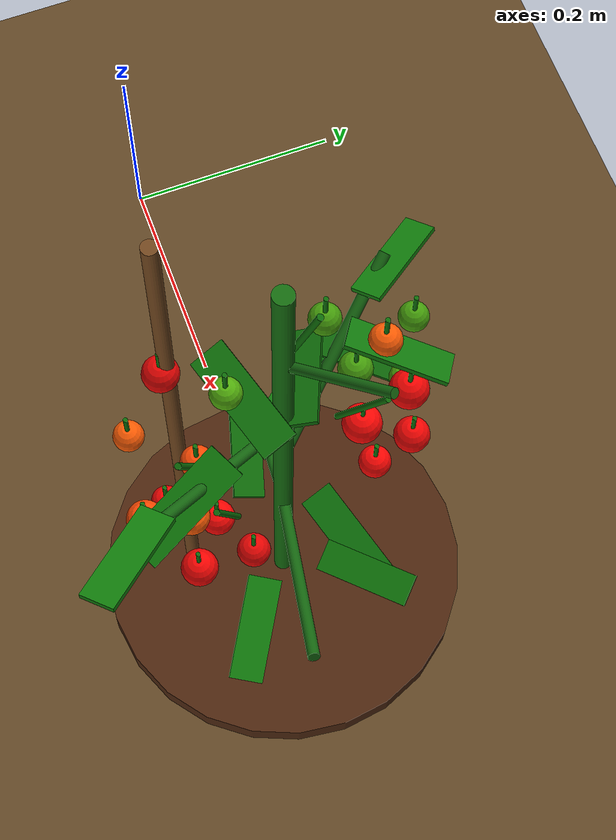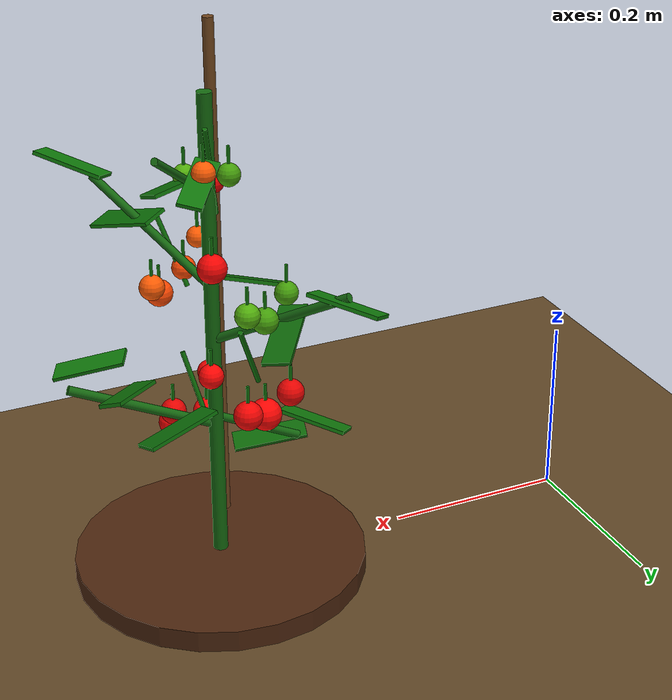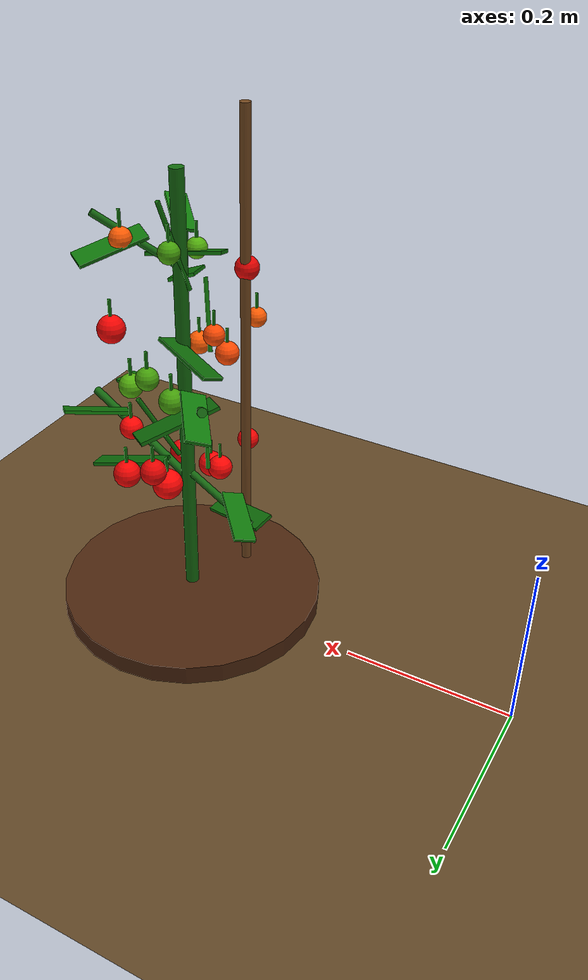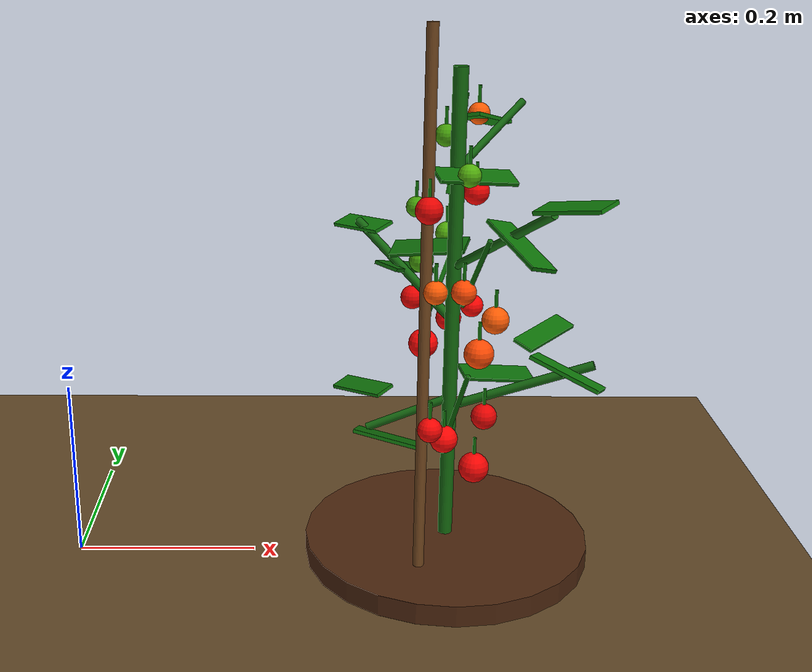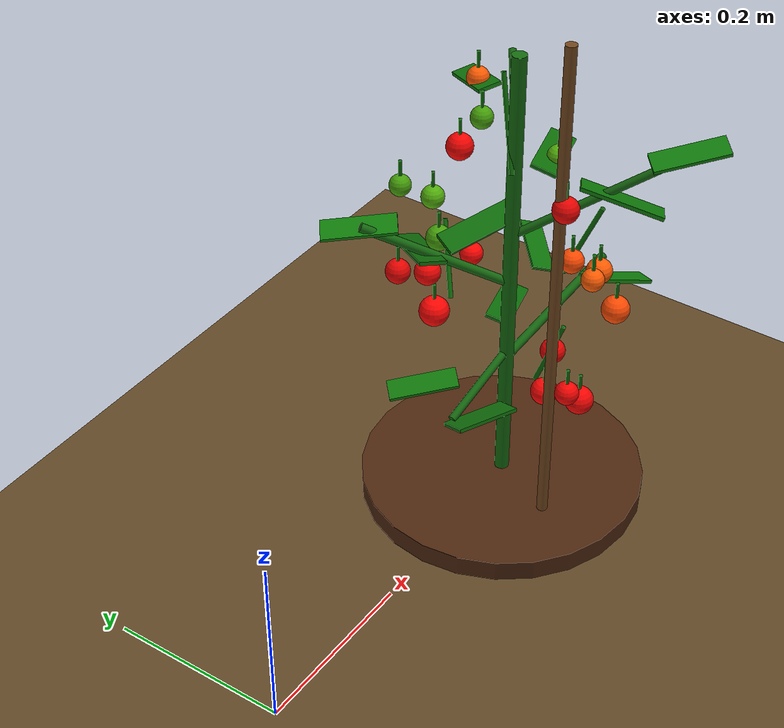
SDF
<?xml version="1.0"?>

<sdf version="1.10">
    <world name="default">

        <!-- GAZEBO SYSTEMS                                    -->

        <plugin
            filename="gz-sim-physics-system"
            name="gz::sim::systems::Physics">
        </plugin>

        <plugin
            filename="gz-sim-user-commands-system"
            name="gz::sim::systems::UserCommands">
        </plugin>

        <plugin
            filename="gz-sim-scene-broadcaster-system"
            name="gz::sim::systems::SceneBroadcaster">
        </plugin>

        <plugin
            filename="gz-sim-sensors-system"
            name="gz::sim::systems::Sensors">

            <!-- Ogre 1 is required on your Pi -->
            <render_engine>ogre</render_engine>
        </plugin>

        <!-- LIGHTING                                          -->

        <scene>
            <ambient>0.55 0.55 0.55 1</ambient>
            <background>0.65 0.78 0.90 1</background>
            <shadows>true</shadows>
        </scene>

        <light name="sun" type="directional">
            <cast_shadows>true</cast_shadows>
            <pose>0 0 10 0 0 0</pose>

            <diffuse>0.9 0.9 0.85 1</diffuse>
            <specular>0.15 0.15 0.15 1</specular>

            <direction>-0.5 0.2 -0.9</direction>
        </light>

        <!-- GROUND                                            -->

        <model name="ground_plane">
            <static>true</static>

            <link name="ground_link">
                <collision name="ground_collision">
                    <geometry>
                        <plane>
                            <normal>0 0 1</normal>
                            <size>10 10</size>
                        </plane>
                    </geometry>
                </collision>

                <visual name="ground_visual">
                    <geometry>
                        <plane>
                            <normal>0 0 1</normal>
                            <size>10 10</size>
                        </plane>
                    </geometry>

                    <material>
                        <ambient>0.30 0.22 0.12 1</ambient>
                        <diffuse>0.38 0.28 0.15 1</diffuse>
                        <specular>0.02 0.02 0.02 1</specular>
                    </material>
                </visual>
            </link>
        </model>

        <!-- TOMATO PLANT                                      -->

        <model name="tomato_plant">

            <!-- Root position relative to robot base -->
            <pose>0.42 0 0 0 0 0</pose>

            <!-- Static for camera-position testing -->
            <static>true</static>

            <link name="plant_link">

                <!-- SOIL MOUND                                -->

                <visual name="soil_mound">
                    <pose>0 0 0.012 0 0 0</pose>

                    <geometry>
                        <cylinder>
                            <radius>0.16</radius>
                            <length>0.024</length>
                        </cylinder>
                    </geometry>

                    <material>
                        <ambient>0.20 0.10 0.04 1</ambient>
                        <diffuse>0.30 0.15 0.06 1</diffuse>
                    </material>
                </visual>

                <!-- SUPPORT STAKE                             -->

                <visual name="support_stake">
                    <pose>-0.035 -0.075 0.30 0 0 0</pose>

                    <geometry>
                        <cylinder>
                            <radius>0.006</radius>
                            <length>0.60</length>
                        </cylinder>
                    </geometry>

                    <material>
                        <ambient>0.32 0.18 0.08 1</ambient>
                        <diffuse>0.45 0.28 0.12 1</diffuse>
                    </material>
                </visual>

                <!-- MAIN STEM                                 -->

                <visual name="main_stem">
                    <pose>0 0 0.275 0 0 0</pose>

                    <geometry>
                        <cylinder>
                            <radius>0.008</radius>
                            <length>0.55</length>
                        </cylinder>
                    </geometry>

                    <material>
                        <ambient>0.05 0.28 0.04 1</ambient>
                        <diffuse>0.08 0.42 0.06 1</diffuse>
                    </material>
                </visual>

                <collision name="main_stem_collision">
                    <pose>0 0 0.275 0 0 0</pose>

                    <geometry>
                        <cylinder>
                            <radius>0.010</radius>
                            <length>0.55</length>
                        </cylinder>
                    </geometry>
                </collision>

                <!-- BRANCHES                                  -->

                <!-- Lower branch extending forward/right -->
                <visual name="branch_lower_forward">
                    <pose>0.075 -0.015 0.21 0 1.197 -0.197</pose>

                    <geometry>
                        <cylinder>
                            <radius>0.005</radius>
                            <length>0.165</length>
                        </cylinder>
                    </geometry>

                    <material>
                        <ambient>0.05 0.26 0.04 1</ambient>
                        <diffuse>0.08 0.40 0.06 1</diffuse>
                    </material>
                </visual>

                <!-- Middle branch extending left -->
                <visual name="branch_middle_left">
                    <pose>-0.05 0.06 0.32 0 1.097 2.266</pose>

                    <geometry>
                        <cylinder>
                            <radius>0.005</radius>
                            <length>0.175</length>
                        </cylinder>
                    </geometry>

                    <material>
                        <ambient>0.05 0.26 0.04 1</ambient>
                        <diffuse>0.08 0.40 0.06 1</diffuse>
                    </material>
                </visual>

                <!-- Upper branch extending right -->
                <visual name="branch_upper_right">
                    <pose>0.04 -0.065 0.385 0 1.039 -1.019</pose>

                    <geometry>
                        <cylinder>
                            <radius>0.0045</radius>
                            <length>0.175</length>
                        </cylinder>
                    </geometry>

                    <material>
                        <ambient>0.05 0.26 0.04 1</ambient>
                        <diffuse>0.08 0.40 0.06 1</diffuse>
                    </material>
                </visual>

                <!-- Top branch -->
                <visual name="branch_top">
                    <pose>0.035 0.025 0.475 0 0.95 0.62</pose>

                    <geometry>
                        <cylinder>
                            <radius>0.004</radius>
                            <length>0.11</length>
                        </cylinder>
                    </geometry>

                    <material>
                        <ambient>0.05 0.26 0.04 1</ambient>
                        <diffuse>0.08 0.40 0.06 1</diffuse>
                    </material>
                </visual>

                <!-- Low left branch -->
                <visual name="branch_low_left">
                    <pose>-0.045 0.005 0.17 0 1.99 3.03</pose>

                    <geometry>
                        <cylinder>
                            <radius>0.0045</radius>
                            <length>0.10</length>
                        </cylinder>
                    </geometry>

                    <material>
                        <ambient>0.05 0.26 0.04 1</ambient>
                        <diffuse>0.08 0.40 0.06 1</diffuse>
                    </material>
                </visual>

                <!-- LEAVES                                    -->
                <!-- Visual-only to keep simulation lightweight -->

                <visual name="leaf_01">
                    <pose>0.055 0.035 0.205 0.25 0.15 0.30</pose>
                    <geometry>
                        <box>
                            <size>0.085 0.028 0.004</size>
                        </box>
                    </geometry>
                    <material>
                        <ambient>0.03 0.26 0.02 1</ambient>
                        <diffuse>0.04 0.42 0.03 1</diffuse>
                    </material>
                </visual>

                <visual name="leaf_02">
                    <pose>0.115 -0.065 0.245 -0.20 0.30 -0.55</pose>
                    <geometry>
                        <box>
                            <size>0.080 0.026 0.004</size>
                        </box>
                    </geometry>
                    <material>
                        <ambient>0.04 0.30 0.02 1</ambient>
                        <diffuse>0.06 0.48 0.04 1</diffuse>
                    </material>
                </visual>

                <visual name="leaf_03">
                    <pose>0.105 0.030 0.255 0.30 -0.15 0.75</pose>
                    <geometry>
                        <box>
                            <size>0.075 0.025 0.004</size>
                        </box>
                    </geometry>
                    <material>
                        <ambient>0.03 0.27 0.02 1</ambient>
                        <diffuse>0.05 0.44 0.03 1</diffuse>
                    </material>
                </visual>

                <visual name="leaf_04">
                    <pose>-0.045 0.085 0.315 0.15 0.25 0.95</pose>
                    <geometry>
                        <box>
                            <size>0.090 0.030 0.004</size>
                        </box>
                    </geometry>
                    <material>
                        <ambient>0.03 0.25 0.02 1</ambient>
                        <diffuse>0.05 0.40 0.03 1</diffuse>
                    </material>
                </visual>

                <visual name="leaf_05">
                    <pose>-0.095 0.125 0.355 -0.30 0.10 2.20</pose>
                    <geometry>
                        <box>
                            <size>0.080 0.026 0.004</size>
                        </box>
                    </geometry>
                    <material>
                        <ambient>0.04 0.30 0.02 1</ambient>
                        <diffuse>0.06 0.48 0.04 1</diffuse>
                    </material>
                </visual>

                <visual name="leaf_06">
                    <pose>-0.025 0.025 0.355 0.35 -0.15 -0.40</pose>
                    <geometry>
                        <box>
                            <size>0.085 0.027 0.004</size>
                        </box>
                    </geometry>
                    <material>
                        <ambient>0.03 0.25 0.02 1</ambient>
                        <diffuse>0.05 0.41 0.03 1</diffuse>
                    </material>
                </visual>

                <visual name="leaf_07">
                    <pose>0.055 -0.095 0.390 -0.25 0.30 -1.15</pose>
                    <geometry>
                        <box>
                            <size>0.090 0.030 0.004</size>
                        </box>
                    </geometry>
                    <material>
                        <ambient>0.03 0.28 0.02 1</ambient>
                        <diffuse>0.05 0.45 0.03 1</diffuse>
                    </material>
                </visual>

                <visual name="leaf_08">
                    <pose>0.095 -0.145 0.440 0.20 -0.20 -0.85</pose>
                    <geometry>
                        <box>
                            <size>0.080 0.027 0.004</size>
                        </box>
                    </geometry>
                    <material>
                        <ambient>0.04 0.30 0.02 1</ambient>
                        <diffuse>0.06 0.48 0.04 1</diffuse>
                    </material>
                </visual>

                <visual name="leaf_09">
                    <pose>0.015 -0.035 0.445 0.30 0.10 0.30</pose>
                    <geometry>
                        <box>
                            <size>0.085 0.028 0.004</size>
                        </box>
                    </geometry>
                    <material>
                        <ambient>0.03 0.26 0.02 1</ambient>
                        <diffuse>0.05 0.43 0.03 1</diffuse>
                    </material>
                </visual>

                <visual name="leaf_10">
                    <pose>0.035 0.070 0.485 -0.20 0.25 0.95</pose>
                    <geometry>
                        <box>
                            <size>0.075 0.025 0.004</size>
                        </box>
                    </geometry>
                    <material>
                        <ambient>0.04 0.29 0.02 1</ambient>
                        <diffuse>0.06 0.46 0.04 1</diffuse>
                    </material>
                </visual>

                <visual name="leaf_11">
                    <pose>-0.065 -0.010 0.145 0.25 -0.15 2.85</pose>
                    <geometry>
                        <box>
                            <size>0.080 0.027 0.004</size>
                        </box>
                    </geometry>
                    <material>
                        <ambient>0.03 0.25 0.02 1</ambient>
                        <diffuse>0.05 0.41 0.03 1</diffuse>
                    </material>
                </visual>

                <visual name="leaf_12">
                    <pose>-0.095 0.045 0.185 -0.25 0.15 2.30</pose>
                    <geometry>
                        <box>
                            <size>0.075 0.025 0.004</size>
                        </box>
                    </geometry>
                    <material>
                        <ambient>0.04 0.29 0.02 1</ambient>
                        <diffuse>0.06 0.46 0.04 1</diffuse>
                    </material>
                </visual>

                <!-- CHERRY TOMATO CLUSTERS                    -->

                <!-- Main stems supporting the fruit clusters -->
                <visual name="lower_cluster_stem">
                    <pose>0.005 -0.050 0.205 0.300 0.220 0.000</pose>
                    <geometry>
                        <cylinder>
                            <radius>0.0026</radius>
                            <length>0.075</length>
                        </cylinder>
                    </geometry>
                    <material>
                        <ambient>0.03 0.25 0.02 1</ambient>
                        <diffuse>0.05 0.42 0.03 1</diffuse>
                    </material>
                </visual>

                <visual name="left_cluster_stem">
                    <pose>-0.012 0.070 0.290 -0.340 0.380 0.000</pose>
                    <geometry>
                        <cylinder>
                            <radius>0.0026</radius>
                            <length>0.085</length>
                        </cylinder>
                    </geometry>
                    <material>
                        <ambient>0.03 0.25 0.02 1</ambient>
                        <diffuse>0.05 0.42 0.03 1</diffuse>
                    </material>
                </visual>

                <visual name="right_cluster_stem">
                    <pose>0.015 -0.075 0.355 0.340 0.280 0.000</pose>
                    <geometry>
                        <cylinder>
                            <radius>0.0026</radius>
                            <length>0.085</length>
                        </cylinder>
                    </geometry>
                    <material>
                        <ambient>0.03 0.25 0.02 1</ambient>
                        <diffuse>0.05 0.42 0.03 1</diffuse>
                    </material>
                </visual>

                <visual name="upper_cluster_stem">
                    <pose>0.000 0.010 0.470 -0.240 0.180 0.000</pose>
                    <geometry>
                        <cylinder>
                            <radius>0.0026</radius>
                            <length>0.105</length>
                        </cylinder>
                    </geometry>
                    <material>
                        <ambient>0.03 0.25 0.02 1</ambient>
                        <diffuse>0.05 0.42 0.03 1</diffuse>
                    </material>
                </visual>

                <!-- Individual fruit and short pedicels -->
                <visual name="cherry_ripe_01">
                    <pose>0.020 -0.082 0.145 0 0 0</pose>
                    <geometry>
                        <sphere>
                            <radius>0.016</radius>
                        </sphere>
                    </geometry>
                    <material>
                        <ambient>0.68 0.012 0.008 1</ambient>
                        <diffuse>0.96 0.020 0.012 1</diffuse>
                        <specular>0.10 0.10 0.10 1</specular>
                    </material>
                </visual>

                <visual name="cherry_ripe_01_pedicel">
                    <pose>0.020 -0.082 0.170 0 0 0</pose>
                    <geometry>
                        <cylinder>
                            <radius>0.0018</radius>
                            <length>0.018</length>
                        </cylinder>
                    </geometry>
                    <material>
                        <ambient>0.03 0.25 0.02 1</ambient>
                        <diffuse>0.05 0.42 0.03 1</diffuse>
                    </material>
                </visual>

                <visual name="cherry_ripe_02">
                    <pose>-0.010 -0.055 0.165 0 0 0</pose>
                    <geometry>
                        <sphere>
                            <radius>0.015</radius>
                        </sphere>
                    </geometry>
                    <material>
                        <ambient>0.72 0.014 0.008 1</ambient>
                        <diffuse>1.00 0.024 0.014 1</diffuse>
                        <specular>0.10 0.10 0.10 1</specular>
                    </material>
                </visual>

                <visual name="cherry_ripe_02_pedicel">
                    <pose>-0.010 -0.055 0.189 0 0 0</pose>
                    <geometry>
                        <cylinder>
                            <radius>0.0018</radius>
                            <length>0.018</length>
                        </cylinder>
                    </geometry>
                    <material>
                        <ambient>0.03 0.25 0.02 1</ambient>
                        <diffuse>0.05 0.42 0.03 1</diffuse>
                    </material>
                </visual>

                <visual name="cherry_ripe_03">
                    <pose>0.034 -0.038 0.184 0 0 0</pose>
                    <geometry>
                        <sphere>
                            <radius>0.014</radius>
                        </sphere>
                    </geometry>
                    <material>
                        <ambient>0.63 0.010 0.006 1</ambient>
                        <diffuse>0.91 0.018 0.010 1</diffuse>
                        <specular>0.09 0.09 0.09 1</specular>
                    </material>
                </visual>

                <visual name="cherry_ripe_03_pedicel">
                    <pose>0.034 -0.038 0.207 0 0 0</pose>
                    <geometry>
                        <cylinder>
                            <radius>0.0018</radius>
                            <length>0.018</length>
                        </cylinder>
                    </geometry>
                    <material>
                        <ambient>0.03 0.25 0.02 1</ambient>
                        <diffuse>0.05 0.42 0.03 1</diffuse>
                    </material>
                </visual>

                <visual name="cherry_ripe_04">
                    <pose>-0.028 -0.092 0.192 0 0 0</pose>
                    <geometry>
                        <sphere>
                            <radius>0.013</radius>
                        </sphere>
                    </geometry>
                    <material>
                        <ambient>0.68 0.012 0.008 1</ambient>
                        <diffuse>0.96 0.020 0.012 1</diffuse>
                        <specular>0.10 0.10 0.10 1</specular>
                    </material>
                </visual>

                <visual name="cherry_ripe_04_pedicel">
                    <pose>-0.028 -0.092 0.214 0 0 0</pose>
                    <geometry>
                        <cylinder>
                            <radius>0.0018</radius>
                            <length>0.018</length>
                        </cylinder>
                    </geometry>
                    <material>
                        <ambient>0.03 0.25 0.02 1</ambient>
                        <diffuse>0.05 0.42 0.03 1</diffuse>
                    </material>
                </visual>

                <visual name="cherry_ripe_05">
                    <pose>-0.025 0.078 0.225 0 0 0</pose>
                    <geometry>
                        <sphere>
                            <radius>0.017</radius>
                        </sphere>
                    </geometry>
                    <material>
                        <ambient>0.72 0.014 0.008 1</ambient>
                        <diffuse>1.00 0.024 0.014 1</diffuse>
                        <specular>0.10 0.10 0.10 1</specular>
                    </material>
                </visual>

                <visual name="cherry_ripe_05_pedicel">
                    <pose>-0.025 0.078 0.251 0 0 0</pose>
                    <geometry>
                        <cylinder>
                            <radius>0.0018</radius>
                            <length>0.018</length>
                        </cylinder>
                    </geometry>
                    <material>
                        <ambient>0.03 0.25 0.02 1</ambient>
                        <diffuse>0.05 0.42 0.03 1</diffuse>
                    </material>
                </visual>

                <visual name="cherry_ripe_06">
                    <pose>0.006 0.108 0.246 0 0 0</pose>
                    <geometry>
                        <sphere>
                            <radius>0.015</radius>
                        </sphere>
                    </geometry>
                    <material>
                        <ambient>0.68 0.012 0.008 1</ambient>
                        <diffuse>0.96 0.020 0.012 1</diffuse>
                        <specular>0.10 0.10 0.10 1</specular>
                    </material>
                </visual>

                <visual name="cherry_ripe_06_pedicel">
                    <pose>0.006 0.108 0.270 0 0 0</pose>
                    <geometry>
                        <cylinder>
                            <radius>0.0018</radius>
                            <length>0.018</length>
                        </cylinder>
                    </geometry>
                    <material>
                        <ambient>0.03 0.25 0.02 1</ambient>
                        <diffuse>0.05 0.42 0.03 1</diffuse>
                    </material>
                </visual>

                <visual name="cherry_ripe_07">
                    <pose>-0.036 0.118 0.268 0 0 0</pose>
                    <geometry>
                        <sphere>
                            <radius>0.014</radius>
                        </sphere>
                    </geometry>
                    <material>
                        <ambient>0.63 0.010 0.006 1</ambient>
                        <diffuse>0.91 0.018 0.010 1</diffuse>
                        <specular>0.09 0.09 0.09 1</specular>
                    </material>
                </visual>

                <visual name="cherry_ripe_07_pedicel">
                    <pose>-0.036 0.118 0.291 0 0 0</pose>
                    <geometry>
                        <cylinder>
                            <radius>0.0018</radius>
                            <length>0.018</length>
                        </cylinder>
                    </geometry>
                    <material>
                        <ambient>0.03 0.25 0.02 1</ambient>
                        <diffuse>0.05 0.42 0.03 1</diffuse>
                    </material>
                </visual>

                <visual name="cherry_ripe_08">
                    <pose>0.028 0.066 0.275 0 0 0</pose>
                    <geometry>
                        <sphere>
                            <radius>0.013</radius>
                        </sphere>
                    </geometry>
                    <material>
                        <ambient>0.72 0.014 0.008 1</ambient>
                        <diffuse>1.00 0.024 0.014 1</diffuse>
                        <specular>0.10 0.10 0.10 1</specular>
                    </material>
                </visual>

                <visual name="cherry_ripe_08_pedicel">
                    <pose>0.028 0.066 0.297 0 0 0</pose>
                    <geometry>
                        <cylinder>
                            <radius>0.0018</radius>
                            <length>0.018</length>
                        </cylinder>
                    </geometry>
                    <material>
                        <ambient>0.03 0.25 0.02 1</ambient>
                        <diffuse>0.05 0.42 0.03 1</diffuse>
                    </material>
                </visual>

                <visual name="cherry_orange_01">
                    <pose>0.016 -0.118 0.286 0 0 0</pose>
                    <geometry>
                        <sphere>
                            <radius>0.015</radius>
                        </sphere>
                    </geometry>
                    <material>
                        <ambient>0.74 0.17 0.005 1</ambient>
                        <diffuse>1.00 0.29 0.010 1</diffuse>
                        <specular>0.08 0.08 0.08 1</specular>
                    </material>
                </visual>

                <visual name="cherry_orange_01_pedicel">
                    <pose>0.016 -0.118 0.310 0 0 0</pose>
                    <geometry>
                        <cylinder>
                            <radius>0.0018</radius>
                            <length>0.018</length>
                        </cylinder>
                    </geometry>
                    <material>
                        <ambient>0.03 0.25 0.02 1</ambient>
                        <diffuse>0.05 0.42 0.03 1</diffuse>
                    </material>
                </visual>

                <visual name="cherry_orange_02">
                    <pose>0.035 -0.086 0.310 0 0 0</pose>
                    <geometry>
                        <sphere>
                            <radius>0.014</radius>
                        </sphere>
                    </geometry>
                    <material>
                        <ambient>0.78 0.21 0.006 1</ambient>
                        <diffuse>1.00 0.36 0.012 1</diffuse>
                        <specular>0.08 0.08 0.08 1</specular>
                    </material>
                </visual>

                <visual name="cherry_orange_02_pedicel">
                    <pose>0.035 -0.086 0.333 0 0 0</pose>
                    <geometry>
                        <cylinder>
                            <radius>0.0018</radius>
                            <length>0.018</length>
                        </cylinder>
                    </geometry>
                    <material>
                        <ambient>0.03 0.25 0.02 1</ambient>
                        <diffuse>0.05 0.42 0.03 1</diffuse>
                    </material>
                </visual>

                <visual name="cherry_orange_03">
                    <pose>0.004 -0.070 0.334 0 0 0</pose>
                    <geometry>
                        <sphere>
                            <radius>0.013</radius>
                        </sphere>
                    </geometry>
                    <material>
                        <ambient>0.74 0.17 0.005 1</ambient>
                        <diffuse>1.00 0.29 0.010 1</diffuse>
                        <specular>0.08 0.08 0.08 1</specular>
                    </material>
                </visual>

                <visual name="cherry_orange_03_pedicel">
                    <pose>0.004 -0.070 0.356 0 0 0</pose>
                    <geometry>
                        <cylinder>
                            <radius>0.0018</radius>
                            <length>0.018</length>
                        </cylinder>
                    </geometry>
                    <material>
                        <ambient>0.03 0.25 0.02 1</ambient>
                        <diffuse>0.05 0.42 0.03 1</diffuse>
                    </material>
                </visual>

                <visual name="cherry_orange_04">
                    <pose>-0.028 -0.112 0.347 0 0 0</pose>
                    <geometry>
                        <sphere>
                            <radius>0.012</radius>
                        </sphere>
                    </geometry>
                    <material>
                        <ambient>0.78 0.21 0.006 1</ambient>
                        <diffuse>1.00 0.36 0.012 1</diffuse>
                        <specular>0.08 0.08 0.08 1</specular>
                    </material>
                </visual>

                <visual name="cherry_orange_04_pedicel">
                    <pose>-0.028 -0.112 0.368 0 0 0</pose>
                    <geometry>
                        <cylinder>
                            <radius>0.0018</radius>
                            <length>0.018</length>
                        </cylinder>
                    </geometry>
                    <material>
                        <ambient>0.03 0.25 0.02 1</ambient>
                        <diffuse>0.05 0.42 0.03 1</diffuse>
                    </material>
                </visual>

                <visual name="cherry_green_01">
                    <pose>-0.030 0.070 0.327 0 0 0</pose>
                    <geometry>
                        <sphere>
                            <radius>0.014</radius>
                        </sphere>
                    </geometry>
                    <material>
                        <ambient>0.16 0.38 0.022 1</ambient>
                        <diffuse>0.27 0.62 0.042 1</diffuse>
                        <specular>0.06 0.06 0.06 1</specular>
                    </material>
                </visual>

                <visual name="cherry_green_01_pedicel">
                    <pose>-0.030 0.070 0.350 0 0 0</pose>
                    <geometry>
                        <cylinder>
                            <radius>0.0018</radius>
                            <length>0.018</length>
                        </cylinder>
                    </geometry>
                    <material>
                        <ambient>0.03 0.25 0.02 1</ambient>
                        <diffuse>0.05 0.42 0.03 1</diffuse>
                    </material>
                </visual>

                <visual name="cherry_green_02">
                    <pose>0.000 0.098 0.351 0 0 0</pose>
                    <geometry>
                        <sphere>
                            <radius>0.013</radius>
                        </sphere>
                    </geometry>
                    <material>
                        <ambient>0.19 0.42 0.026 1</ambient>
                        <diffuse>0.32 0.68 0.048 1</diffuse>
                        <specular>0.07 0.07 0.07 1</specular>
                    </material>
                </visual>

                <visual name="cherry_green_02_pedicel">
                    <pose>0.000 0.098 0.373 0 0 0</pose>
                    <geometry>
                        <cylinder>
                            <radius>0.0018</radius>
                            <length>0.018</length>
                        </cylinder>
                    </geometry>
                    <material>
                        <ambient>0.03 0.25 0.02 1</ambient>
                        <diffuse>0.05 0.42 0.03 1</diffuse>
                    </material>
                </visual>

                <visual name="cherry_green_03">
                    <pose>-0.034 0.116 0.377 0 0 0</pose>
                    <geometry>
                        <sphere>
                            <radius>0.012</radius>
                        </sphere>
                    </geometry>
                    <material>
                        <ambient>0.16 0.38 0.022 1</ambient>
                        <diffuse>0.27 0.62 0.042 1</diffuse>
                        <specular>0.06 0.06 0.06 1</specular>
                    </material>
                </visual>

                <visual name="cherry_green_03_pedicel">
                    <pose>-0.034 0.116 0.398 0 0 0</pose>
                    <geometry>
                        <cylinder>
                            <radius>0.0018</radius>
                            <length>0.018</length>
                        </cylinder>
                    </geometry>
                    <material>
                        <ambient>0.03 0.25 0.02 1</ambient>
                        <diffuse>0.05 0.42 0.03 1</diffuse>
                    </material>
                </visual>

                <visual name="cherry_ripe_09">
                    <pose>0.030 0.085 0.402 0 0 0</pose>
                    <geometry>
                        <sphere>
                            <radius>0.015</radius>
                        </sphere>
                    </geometry>
                    <material>
                        <ambient>0.68 0.012 0.008 1</ambient>
                        <diffuse>0.96 0.020 0.012 1</diffuse>
                        <specular>0.10 0.10 0.10 1</specular>
                    </material>
                </visual>

                <visual name="cherry_ripe_09_pedicel">
                    <pose>0.030 0.085 0.426 0 0 0</pose>
                    <geometry>
                        <cylinder>
                            <radius>0.0018</radius>
                            <length>0.018</length>
                        </cylinder>
                    </geometry>
                    <material>
                        <ambient>0.03 0.25 0.02 1</ambient>
                        <diffuse>0.05 0.42 0.03 1</diffuse>
                    </material>
                </visual>

                <visual name="cherry_ripe_10">
                    <pose>-0.034 -0.080 0.421 0 0 0</pose>
                    <geometry>
                        <sphere>
                            <radius>0.014</radius>
                        </sphere>
                    </geometry>
                    <material>
                        <ambient>0.63 0.010 0.006 1</ambient>
                        <diffuse>0.91 0.018 0.010 1</diffuse>
                        <specular>0.09 0.09 0.09 1</specular>
                    </material>
                </visual>

                <visual name="cherry_ripe_10_pedicel">
                    <pose>-0.034 -0.080 0.444 0 0 0</pose>
                    <geometry>
                        <cylinder>
                            <radius>0.0018</radius>
                            <length>0.018</length>
                        </cylinder>
                    </geometry>
                    <material>
                        <ambient>0.03 0.25 0.02 1</ambient>
                        <diffuse>0.05 0.42 0.03 1</diffuse>
                    </material>
                </visual>

                <visual name="cherry_green_04">
                    <pose>0.008 -0.045 0.448 0 0 0</pose>
                    <geometry>
                        <sphere>
                            <radius>0.012</radius>
                        </sphere>
                    </geometry>
                    <material>
                        <ambient>0.19 0.42 0.026 1</ambient>
                        <diffuse>0.32 0.68 0.048 1</diffuse>
                        <specular>0.07 0.07 0.07 1</specular>
                    </material>
                </visual>

                <visual name="cherry_green_04_pedicel">
                    <pose>0.008 -0.045 0.469 0 0 0</pose>
                    <geometry>
                        <cylinder>
                            <radius>0.0018</radius>
                            <length>0.018</length>
                        </cylinder>
                    </geometry>
                    <material>
                        <ambient>0.03 0.25 0.02 1</ambient>
                        <diffuse>0.05 0.42 0.03 1</diffuse>
                    </material>
                </visual>

                <visual name="cherry_green_05">
                    <pose>-0.010 0.034 0.474 0 0 0</pose>
                    <geometry>
                        <sphere>
                            <radius>0.012</radius>
                        </sphere>
                    </geometry>
                    <material>
                        <ambient>0.16 0.38 0.022 1</ambient>
                        <diffuse>0.27 0.62 0.042 1</diffuse>
                        <specular>0.06 0.06 0.06 1</specular>
                    </material>
                </visual>

                <visual name="cherry_green_05_pedicel">
                    <pose>-0.010 0.034 0.495 0 0 0</pose>
                    <geometry>
                        <cylinder>
                            <radius>0.0018</radius>
                            <length>0.018</length>
                        </cylinder>
                    </geometry>
                    <material>
                        <ambient>0.03 0.25 0.02 1</ambient>
                        <diffuse>0.05 0.42 0.03 1</diffuse>
                    </material>
                </visual>

                <visual name="cherry_orange_05">
                    <pose>0.027 0.063 0.492 0 0 0</pose>
                    <geometry>
                        <sphere>
                            <radius>0.012</radius>
                        </sphere>
                    </geometry>
                    <material>
                        <ambient>0.78 0.21 0.006 1</ambient>
                        <diffuse>1.00 0.36 0.012 1</diffuse>
                        <specular>0.08 0.08 0.08 1</specular>
                    </material>
                </visual>

                <visual name="cherry_orange_05_pedicel">
                    <pose>0.027 0.063 0.513 0 0 0</pose>
                    <geometry>
                        <cylinder>
                            <radius>0.0018</radius>
                            <length>0.018</length>
                        </cylinder>
                    </geometry>
                    <material>
                        <ambient>0.03 0.25 0.02 1</ambient>
                        <diffuse>0.05 0.42 0.03 1</diffuse>
                    </material>
                </visual>

            </link>
        </model>

    </world>
</sdf>
